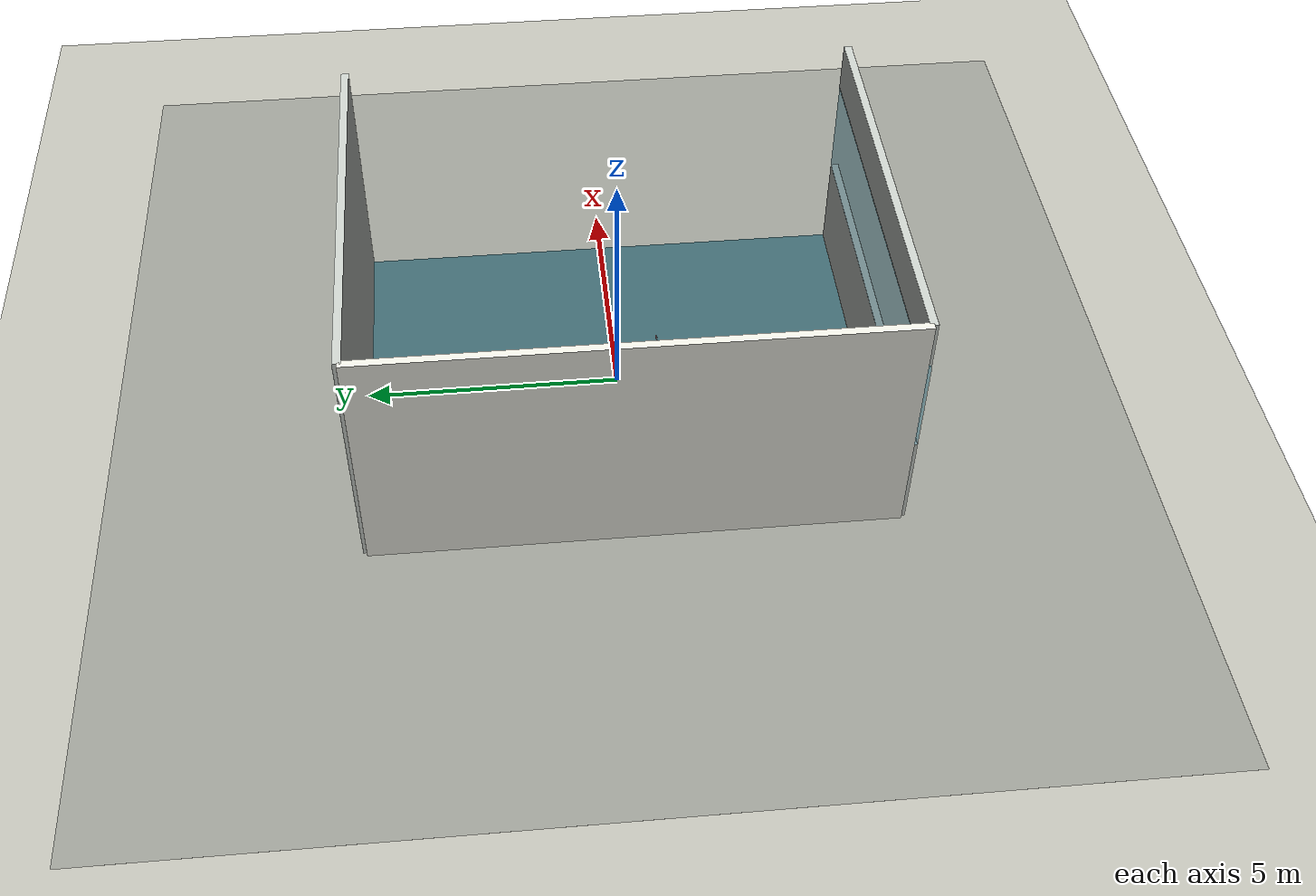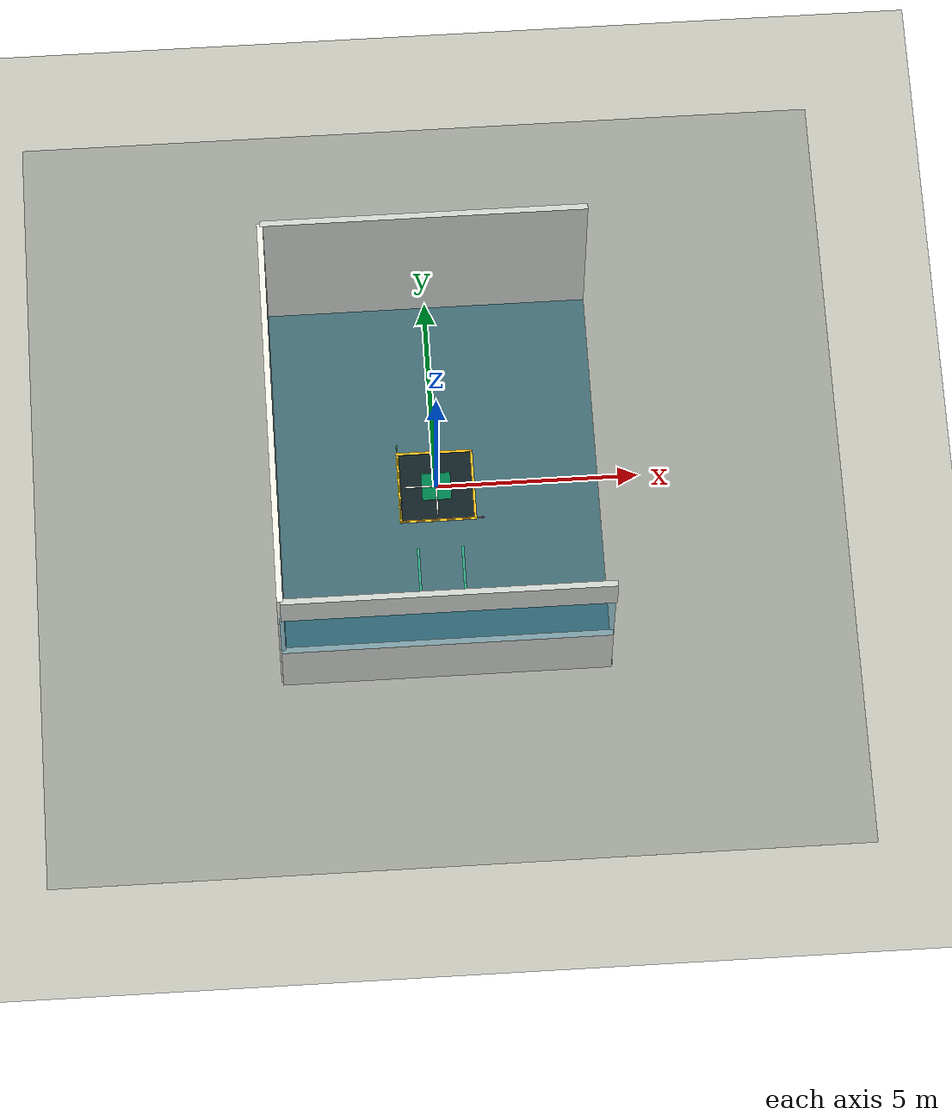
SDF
<sdf version="1.9">
 <world name="laboratory_no_landingbox">
  <physics type="ode">
   <ode>
    <solver>
     <type>quick</type>
     <iters>10</iters>
     <sor>1.3</sor>
     <use_dynamic_moi_rescaling>0</use_dynamic_moi_rescaling>
    </solver>
    <constraints>
     <cfm>0</cfm>
     <erp>0.2</erp>
     <contact_max_correcting_vel>100</contact_max_correcting_vel>
     <contact_surface_layer>0.001</contact_surface_layer>
    </constraints>
   </ode>
   <max_step_size>0.004</max_step_size>
   <real_time_factor>1.0</real_time_factor>
   <real_time_update_rate>250</real_time_update_rate>
  </physics>
  <gravity>0 0 -9.8</gravity>
  <magnetic_field>6e-06 2.3e-05 -4.2e-05</magnetic_field>
  <atmosphere type="adiabatic"/>
  <scene>
   <grid>false</grid>
   <ambient>0.58 0.58 0.56 1</ambient>
   <background>0.78 0.80 0.82 1</background>
   <shadows>true</shadows>
  </scene>
  <model name="debug_world_axes">
   <static>true</static>
   <pose>-0.92 -0.92 0 0 0 0</pose>
   <link name="axes_link">
    <visual name="origin_dot">
     <pose>0 0 0.055 0 0 0</pose>
     <geometry><sphere><radius>0.028</radius></sphere></geometry>
     <material>
      <ambient>0.75 0.65 0.15 0.55</ambient>
      <diffuse>0.75 0.65 0.15 0.55</diffuse>
      <emissive>0.08 0.06 0.00 1</emissive>
     </material>
     <transparency>0.10</transparency>
     <cast_shadows>false</cast_shadows>
    </visual>
    <visual name="x_axis_red_line">
     <pose>1.00 0 0.055 0 1.5708 0</pose>
     <geometry><cylinder><radius>0.006</radius><length>2.00</length></cylinder></geometry>
     <material>
      <ambient>0.75 0.10 0.10 0.45</ambient>
      <diffuse>0.75 0.10 0.10 0.45</diffuse>
      <emissive>0.04 0.00 0.00 1</emissive>
     </material>
     <transparency>0.10</transparency>
     <cast_shadows>false</cast_shadows>
    </visual>
    <visual name="x_axis_tip">
     <pose>2.04 0 0.055 0 1.5708 0</pose>
     <geometry><cone><radius>0.026</radius><length>0.08</length></cone></geometry>
     <material>
      <ambient>0.75 0.10 0.10 0.45</ambient>
      <diffuse>0.75 0.10 0.10 0.45</diffuse>
      <emissive>0.04 0.00 0.00 1</emissive>
     </material>
     <transparency>0.10</transparency>
     <cast_shadows>false</cast_shadows>
    </visual>
    <visual name="y_axis_green_line">
     <pose>0 1.00 0.065 -1.5708 0 0</pose>
     <geometry><cylinder><radius>0.006</radius><length>2.00</length></cylinder></geometry>
     <material>
      <ambient>0.10 0.65 0.10 0.45</ambient>
      <diffuse>0.10 0.65 0.10 0.45</diffuse>
      <emissive>0.00 0.04 0.00 1</emissive>
     </material>
     <transparency>0.10</transparency>
     <cast_shadows>false</cast_shadows>
    </visual>
    <visual name="y_axis_tip">
     <pose>0 2.04 0.065 -1.5708 0 0</pose>
     <geometry><cone><radius>0.026</radius><length>0.08</length></cone></geometry>
     <material>
      <ambient>0.10 0.65 0.10 0.45</ambient>
      <diffuse>0.10 0.65 0.10 0.45</diffuse>
      <emissive>0.00 0.04 0.00 1</emissive>
     </material>
     <transparency>0.10</transparency>
     <cast_shadows>false</cast_shadows>
    </visual>
    <visual name="z_axis_blue_line">
     <pose>0 0 0.60 0 0 0</pose>
     <geometry><cylinder><radius>0.006</radius><length>1.20</length></cylinder></geometry>
     <material>
      <ambient>0.10 0.20 0.80 0.45</ambient>
      <diffuse>0.10 0.20 0.80 0.45</diffuse>
      <emissive>0.00 0.00 0.05 1</emissive>
     </material>
     <transparency>0.10</transparency>
     <cast_shadows>false</cast_shadows>
    </visual>
    <visual name="z_axis_tip">
     <pose>0 0 1.24 0 0 0</pose>
     <geometry><cone><radius>0.026</radius><length>0.08</length></cone></geometry>
     <material>
      <ambient>0.10 0.20 0.80 0.45</ambient>
      <diffuse>0.10 0.20 0.80 0.45</diffuse>
      <emissive>0.00 0.00 0.05 1</emissive>
     </material>
     <transparency>0.10</transparency>
     <cast_shadows>false</cast_shadows>
    </visual>
   </link>
  </model>
  <model name="ground_plane">
   <static>true</static>
   <link name="link">
    <collision name="collision">
     <geometry><plane><normal>0 0 1</normal><size>500 500</size></plane></geometry>
     <surface><friction><ode><mu>100</mu><mu2>50</mu2></ode></friction></surface>
    </collision>
    <visual name="visual">
     <geometry><plane><normal>0 0 1</normal><size>500 500</size></plane></geometry>
     <material>
      <ambient>0.74 0.74 0.70 1</ambient>
      <diffuse>0.74 0.74 0.70 1</diffuse>
      <specular>0.05 0.05 0.05 1</specular>
     </material>
    </visual>
    <inertial>
     <mass>1</mass>
     <inertia><ixx>1</ixx><ixy>0</ixy><ixz>0</ixz><iyy>1</iyy><iyz>0</iyz><izz>1</izz></inertia>
    </inertial>
   </link>
  </model>
  <light name="sunUTC" type="directional">
   <pose>0 0 500 0 0 0</pose>
   <intensity>1.15</intensity>
   <direction>-0.25 0.45 -0.86</direction>
   <diffuse>0.98 0.94 0.86 1</diffuse>
   <specular>0.28 0.28 0.25 1</specular>
   <attenuation><range>2000</range><linear>0</linear><constant>1</constant><quadratic>0</quadratic></attenuation>
   <spot><inner_angle>0</inner_angle><outer_angle>0</outer_angle><falloff>0</falloff></spot>
  </light>
  <spherical_coordinates>
   <surface_model>EARTH_WGS84</surface_model>
   <world_frame_orientation>ENU</world_frame_orientation>
   <latitude_deg>30.334034</latitude_deg>
   <longitude_deg>120.036295</longitude_deg>
   <elevation>0</elevation>
  </spherical_coordinates>
  <model name="Floor_room">
   <link name="main">
    <pose>0 0 0.01 0 -0 0</pose>
    <collision name="main_Collision"><geometry><box><size>20 20 0.001</size></box></geometry></collision>
    <visual name="main_Visual">
     <geometry><box><size>20 20 0.001</size></box></geometry>
     <material>
      <ambient>0.56 0.58 0.56 1</ambient>
      <diffuse>0.60 0.61 0.58 1</diffuse>
      <specular>0.02 0.02 0.02 1</specular>
     </material>
    </visual>
   </link>
   <static>true</static>
   <pose>0.043797 -0.01325 0 0 -0 0</pose>
  </model>
  <model name="window">
   <link name="link_2">
    <pose>-3.65586 -0.020997 0.361529 0 -0 0</pose>
    <inertial>
     <mass>1</mass>
     <inertia><ixx>1</ixx><ixy>0</ixy><ixz>0</ixz><iyy>1</iyy><iyz>0</iyz><izz>1</izz></inertia>
    </inertial>
    <visual name="visual">
     <pose>0 0 0.9 0 -0 0</pose>
     <geometry><box><size>8 0.15 2</size></box></geometry>
     <material>
      <lighting>true</lighting>
      <ambient>0.20 0.50 0.60 0.7</ambient>
      <diffuse>0.22 0.62 0.75 0.7</diffuse>
      <specular>0.18 0.18 0.18 1</specular>
      <emissive>0.02 0.06 0.08 1</emissive>
     </material>
     <transparency>0.55</transparency>
    </visual>
    <collision name="collision">
     <pose>0 0 0.9 0 -0 0</pose>
     <geometry><box><size>8 0.15 2</size></box></geometry>
     <surface>
      <friction>
       <ode><mu>1</mu><mu2>1</mu2><fdir1>0 0 0</fdir1><slip1>0</slip1><slip2>0</slip2></ode>
       <torsional>
        <coefficient>1</coefficient>
        <patch_radius>0</patch_radius>
        <surface_radius>0</surface_radius>
        <use_patch_radius>1</use_patch_radius>
        <ode><slip>0</slip></ode>
       </torsional>
      </friction>
      <bounce><restitution_coefficient>0</restitution_coefficient><threshold>1e+06</threshold></bounce>
      <contact>
       <collide_without_contact>0</collide_without_contact>
       <collide_without_contact_bitmask>1</collide_without_contact_bitmask>
       <collide_bitmask>1</collide_bitmask>
       <ode>
        <soft_cfm>0</soft_cfm>
        <soft_erp>0.2</soft_erp>
        <kp>1e+13</kp>
        <kd>1</kd>
        <max_vel>0.01</max_vel>
        <min_depth>0</min_depth>
       </ode>
       <bullet>
        <split_impulse>1</split_impulse>
        <split_impulse_penetration_threshold>-0.01</split_impulse_penetration_threshold>
        <soft_cfm>0</soft_cfm>
        <soft_erp>0.2</soft_erp>
        <kp>1e+13</kp>
        <kd>1</kd>
       </bullet>
      </contact>
     </surface>
    </collision>
   </link>
   <static>true</static>
   <pose>3.62277 -4.97689 1.7565 0 -0 0</pose>
  </model>
  <model name="Workshop">
   <link name="Wall_10">
    <pose>-2.5053 2.09449 2 0 0 -1.5708</pose>
    <inertial>
     <mass>1</mass>
     <inertia><ixx>1</ixx><ixy>0</ixy><ixz>0</ixz><iyy>1</iyy><iyz>0</iyz><izz>1</izz></inertia>
    </inertial>
    <visual name="Wall_10_Visual">
     <pose>0 0 0.5 0 -0 0</pose>
     <geometry><box><size>10 0.15 5</size></box></geometry>
     <material>
      <ambient>0.88 0.88 0.84 1</ambient>
      <diffuse>0.92 0.92 0.88 1</diffuse>
      <specular>0.02 0.02 0.02 1</specular>
      <emissive>0 0 0 1</emissive>
     </material>
    </visual>
    <collision name="Wall_10_Collision">
     <pose>0 0 0.5 0 -0 0</pose>
     <geometry><box><size>10 0.15 5</size></box></geometry>
     <surface>
      <friction>
       <ode><mu>1</mu><mu2>1</mu2><fdir1>0 0 0</fdir1><slip1>0</slip1><slip2>0</slip2></ode>
       <torsional>
        <coefficient>1</coefficient>
        <patch_radius>0</patch_radius>
        <surface_radius>0</surface_radius>
        <use_patch_radius>1</use_patch_radius>
        <ode><slip>0</slip></ode>
       </torsional>
      </friction>
      <bounce><restitution_coefficient>0</restitution_coefficient><threshold>1e+06</threshold></bounce>
      <contact>
       <collide_without_contact>0</collide_without_contact>
       <collide_without_contact_bitmask>1</collide_without_contact_bitmask>
       <collide_bitmask>1</collide_bitmask>
       <ode>
        <soft_cfm>0</soft_cfm>
        <soft_erp>0.2</soft_erp>
        <kp>1e+13</kp>
        <kd>1</kd>
        <max_vel>0.01</max_vel>
        <min_depth>0</min_depth>
       </ode>
       <bullet>
        <split_impulse>1</split_impulse>
        <split_impulse_penetration_threshold>-0.01</split_impulse_penetration_threshold>
        <soft_cfm>0</soft_cfm>
        <soft_erp>0.2</soft_erp>
        <kp>1e+13</kp>
        <kd>1</kd>
       </bullet>
      </contact>
     </surface>
    </collision>
   </link>
   <link name="Wall_11">
    <pose>1.46131 -2.90507 0.516113 0 -0 3.14159</pose>
    <inertial>
     <inertia><ixx>1</ixx><ixy>0</ixy><ixz>0</ixz><iyy>1</iyy><iyz>0</iyz><izz>1</izz></inertia>
     <mass>1</mass>
    </inertial>
    <visual name="Wall_11_Visual">
     <pose>0 0 0.5 0 -0 0</pose>
     <geometry><box><size>8 0.15 2</size></box></geometry>
     <material>
      <ambient>0.72 0.74 0.72 1</ambient>
      <emissive>0 0 0 1</emissive>
      <diffuse>0.78 0.80 0.78 1</diffuse>
      <specular>0.02 0.02 0.02 1</specular>
     </material>
    </visual>
    <collision name="Wall_11_Collision">
     <pose>0 0 0.5 0 -0 0</pose>
     <geometry><box><size>8 0.15 2</size></box></geometry>
     <surface>
      <friction>
       <ode><mu>1</mu><mu2>1</mu2><fdir1>0 0 0</fdir1><slip1>0</slip1><slip2>0</slip2></ode>
       <torsional>
        <coefficient>1</coefficient>
        <patch_radius>0</patch_radius>
        <surface_radius>0</surface_radius>
        <use_patch_radius>1</use_patch_radius>
        <ode><slip>0</slip></ode>
       </torsional>
      </friction>
      <bounce><restitution_coefficient>0</restitution_coefficient><threshold>1e+06</threshold></bounce>
      <contact>
       <collide_without_contact>0</collide_without_contact>
       <collide_without_contact_bitmask>1</collide_without_contact_bitmask>
       <collide_bitmask>1</collide_bitmask>
       <ode>
        <soft_cfm>0</soft_cfm>
        <soft_erp>0.2</soft_erp>
        <kp>1e+13</kp>
        <kd>1</kd>
        <max_vel>0.01</max_vel>
        <min_depth>0</min_depth>
       </ode>
       <bullet>
        <split_impulse>1</split_impulse>
        <split_impulse_penetration_threshold>-0.01</split_impulse_penetration_threshold>
        <soft_cfm>0</soft_cfm>
        <soft_erp>0.2</soft_erp>
        <kp>1e+13</kp>
        <kd>1</kd>
       </bullet>
      </contact>
     </surface>
    </collision>
   </link>
   <link name="Wall_11_clone">
    <pose>1.4947 -2.90551 4 0 -0 3.14159</pose>
    <inertial>
     <inertia><ixx>1</ixx><ixy>0</ixy><ixz>0</ixz><iyy>1</iyy><iyz>0</iyz><izz>1</izz></inertia>
     <mass>1</mass>
    </inertial>
    <visual name="Wall_11_Visual">
     <pose>0 0 0.5 0 -0 0</pose>
     <geometry><box><size>8 0.15 1</size></box></geometry>
     <material>
      <ambient>0.72 0.74 0.72 1</ambient>
      <emissive>0 0 0 1</emissive>
      <diffuse>0.78 0.80 0.78 1</diffuse>
      <specular>0.02 0.02 0.02 1</specular>
     </material>
    </visual>
    <collision name="Wall_11_Collision">
     <pose>0 0 0.5 0 -0 0</pose>
     <geometry><box><size>7.71217 0.15 1</size></box></geometry>
     <surface>
      <friction>
       <ode><mu>1</mu><mu2>1</mu2><fdir1>0 0 0</fdir1><slip1>0</slip1><slip2>0</slip2></ode>
       <torsional>
        <coefficient>1</coefficient>
        <patch_radius>0</patch_radius>
        <surface_radius>0</surface_radius>
        <use_patch_radius>1</use_patch_radius>
        <ode><slip>0</slip></ode>
       </torsional>
      </friction>
      <bounce><restitution_coefficient>0</restitution_coefficient><threshold>1e+06</threshold></bounce>
      <contact>
       <collide_without_contact>0</collide_without_contact>
       <collide_without_contact_bitmask>1</collide_without_contact_bitmask>
       <collide_bitmask>1</collide_bitmask>
       <ode>
        <soft_cfm>0</soft_cfm>
        <soft_erp>0.2</soft_erp>
        <kp>1e+13</kp>
        <kd>1</kd>
        <max_vel>0.01</max_vel>
        <min_depth>0</min_depth>
       </ode>
       <bullet>
        <split_impulse>1</split_impulse>
        <split_impulse_penetration_threshold>-0.01</split_impulse_penetration_threshold>
        <soft_cfm>0</soft_cfm>
        <soft_erp>0.2</soft_erp>
        <kp>1e+13</kp>
        <kd>1</kd>
       </bullet>
      </contact>
     </surface>
    </collision>
   </link>
   <link name="Wall_13">
    <pose>1.4947 7.09449 2 0 -0 3.14159</pose>
    <inertial>
     <mass>1</mass>
     <inertia><ixx>1</ixx><ixy>0</ixy><ixz>0</ixz><iyy>1</iyy><iyz>0</iyz><izz>1</izz></inertia>
    </inertial>
    <visual name="Wall_13_Visual">
     <pose>0 0 0.5 0 -0 0</pose>
     <geometry><box><size>8 0.15 5</size></box></geometry>
     <material>
      <ambient>0.72 0.74 0.72 1</ambient>
      <diffuse>0.78 0.80 0.78 1</diffuse>
      <specular>0.02 0.02 0.02 1</specular>
      <emissive>0 0 0 1</emissive>
     </material>
    </visual>
    <collision name="Wall_13_Collision">
     <pose>0 0 0.5 0 -0 0</pose>
     <geometry><box><size>8 0.15 5</size></box></geometry>
     <surface>
      <friction>
       <ode><mu>1</mu><mu2>1</mu2><fdir1>0 0 0</fdir1><slip1>0</slip1><slip2>0</slip2></ode>
       <torsional>
        <coefficient>1</coefficient>
        <patch_radius>0</patch_radius>
        <surface_radius>0</surface_radius>
        <use_patch_radius>1</use_patch_radius>
        <ode><slip>0</slip></ode>
       </torsional>
      </friction>
      <bounce><restitution_coefficient>0</restitution_coefficient><threshold>1e+06</threshold></bounce>
      <contact>
       <collide_without_contact>0</collide_without_contact>
       <collide_without_contact_bitmask>1</collide_without_contact_bitmask>
       <collide_bitmask>1</collide_bitmask>
       <ode>
        <soft_cfm>0</soft_cfm>
        <soft_erp>0.2</soft_erp>
        <kp>1e+13</kp>
        <kd>1</kd>
        <max_vel>0.01</max_vel>
        <min_depth>0</min_depth>
       </ode>
       <bullet>
        <split_impulse>1</split_impulse>
        <split_impulse_penetration_threshold>-0.01</split_impulse_penetration_threshold>
        <soft_cfm>0</soft_cfm>
        <soft_erp>0.2</soft_erp>
        <kp>1e+13</kp>
        <kd>1</kd>
       </bullet>
      </contact>
     </surface>
    </collision>
   </link>
   <link name="link_0">
    <inertial>
     <mass>1</mass>
     <inertia>
      <ixx>0.166667</ixx>
      <ixy>0</ixy>
      <ixz>0</ixz>
      <iyy>0.166667</iyy>
      <iyz>0</iyz>
      <izz>0.166667</izz>
     </inertia>
    </inertial>
    <pose>1.49282 2.06191 0.012848 0 0 -1.5708</pose>
    <visual name="visual">
     <geometry><box><size>10 8 0.013</size></box></geometry>
     <material>
      <lighting>1</lighting>
      <ambient>0.20 0.33 0.36 1</ambient>
      <diffuse>0.24 0.40 0.43 1</diffuse>
      <specular>0.02 0.02 0.02 1</specular>
      <emissive>0 0 0 1</emissive>
     </material>
    </visual>
    <collision name="collision"><geometry><box><size>10 8 0.013</size></box></geometry></collision>
   </link>
   <static>true</static>
   <pose>-1.4947 -2.09449 0 0 -0 0</pose>
  </model>
  <light name="soft_ceiling_fill" type="point">
   <pose>0 0 4.5 0 0 0</pose>
   <cast_shadows>false</cast_shadows>
   <intensity>0.65</intensity>
   <diffuse>0.92 0.96 1 1</diffuse>
   <specular>0.15 0.15 0.15 1</specular>
   <attenuation>
    <range>12</range>
    <constant>0.7</constant>
    <linear>0.08</linear>
    <quadratic>0.01</quadratic>
   </attenuation>
  </light>
  <light name="landing_zone_fill" type="point">
   <pose>0 0 2.2 0 0 0</pose>
   <cast_shadows>false</cast_shadows>
   <intensity>0.45</intensity>
   <diffuse>0.75 0.95 0.85 1</diffuse>
   <specular>0.10 0.10 0.10 1</specular>
   <attenuation>
    <range>5</range>
    <constant>0.8</constant>
    <linear>0.15</linear>
    <quadratic>0.03</quadratic>
   </attenuation>
  </light>
  <model name="landing_zone_mat">
   <static>true</static>
   <pose>0 0 0.018 0 0 0</pose>
   <link name="link">
    <visual name="visual">
     <geometry><box><size>1.80 1.80 0.006</size></box></geometry>
     <material>
      <ambient>0.05 0.09 0.10 1</ambient>
      <diffuse>0.06 0.12 0.13 1</diffuse>
      <specular>0.02 0.02 0.02 1</specular>
     </material>
     <transparency>0.10</transparency>
     <cast_shadows>false</cast_shadows>
    </visual>
   </link>
  </model>
  <model name="landing_zone_center">
   <static>true</static>
   <pose>0 0 0.024 0 0 0</pose>
   <link name="link">
    <visual name="visual">
     <geometry><box><size>0.72 0.72 0.004</size></box></geometry>
     <material>
      <ambient>0.00 0.35 0.22 1</ambient>
      <diffuse>0.00 0.60 0.36 1</diffuse>
      <specular>0.02 0.02 0.02 1</specular>
     </material>
     <transparency>0.18</transparency>
     <cast_shadows>false</cast_shadows>
    </visual>
   </link>
  </model>
  <model name="landing_zone_border_n">
   <static>true</static>
   <pose>0 0.92 0.03 0 0 0</pose>
   <link name="link">
    <visual name="visual">
     <geometry><box><size>1.90 0.06 0.008</size></box></geometry>
     <material>
      <ambient>1.00 0.74 0.10 1</ambient>
      <diffuse>1.00 0.74 0.10 1</diffuse>
      <specular>0.02 0.02 0.02 1</specular>
     </material>
     <cast_shadows>false</cast_shadows>
    </visual>
   </link>
  </model>
  <model name="landing_zone_border_s">
   <static>true</static>
   <pose>0 -0.92 0.03 0 0 0</pose>
   <link name="link">
    <visual name="visual">
     <geometry><box><size>1.90 0.06 0.008</size></box></geometry>
     <material>
      <ambient>1.00 0.74 0.10 1</ambient>
      <diffuse>1.00 0.74 0.10 1</diffuse>
      <specular>0.02 0.02 0.02 1</specular>
     </material>
     <cast_shadows>false</cast_shadows>
    </visual>
   </link>
  </model>
  <model name="landing_zone_border_e">
   <static>true</static>
   <pose>0.92 0 0.03 0 0 0</pose>
   <link name="link">
    <visual name="visual">
     <geometry><box><size>0.06 1.90 0.008</size></box></geometry>
     <material>
      <ambient>1.00 0.74 0.10 1</ambient>
      <diffuse>1.00 0.74 0.10 1</diffuse>
      <specular>0.02 0.02 0.02 1</specular>
     </material>
     <cast_shadows>false</cast_shadows>
    </visual>
   </link>
  </model>
  <model name="landing_zone_border_w">
   <static>true</static>
   <pose>-0.92 0 0.03 0 0 0</pose>
   <link name="link">
    <visual name="visual">
     <geometry><box><size>0.06 1.90 0.008</size></box></geometry>
     <material>
      <ambient>1.00 0.74 0.10 1</ambient>
      <diffuse>1.00 0.74 0.10 1</diffuse>
      <specular>0.02 0.02 0.02 1</specular>
     </material>
     <cast_shadows>false</cast_shadows>
    </visual>
   </link>
  </model>
  <model name="clearance_mark_x">
   <static>true</static>
   <pose>0 0 0.034 0 0 0</pose>
   <link name="link">
    <visual name="visual">
     <geometry><box><size>1.55 0.035 0.006</size></box></geometry>
     <material>
      <ambient>0.95 0.95 0.90 1</ambient>
      <diffuse>0.95 0.95 0.90 1</diffuse>
      <specular>0.02 0.02 0.02 1</specular>
     </material>
     <transparency>0.05</transparency>
     <cast_shadows>false</cast_shadows>
    </visual>
   </link>
  </model>
  <model name="clearance_mark_y">
   <static>true</static>
   <pose>0 0 0.035 0 0 0</pose>
   <link name="link">
    <visual name="visual">
     <geometry><box><size>0.035 1.55 0.006</size></box></geometry>
     <material>
      <ambient>0.95 0.95 0.90 1</ambient>
      <diffuse>0.95 0.95 0.90 1</diffuse>
      <specular>0.02 0.02 0.02 1</specular>
     </material>
     <transparency>0.05</transparency>
     <cast_shadows>false</cast_shadows>
    </visual>
   </link>
  </model>
  <model name="clearance_lane_left">
   <static>true</static>
   <pose>-0.55 -2.65 0.026 0 0 0</pose>
   <link name="link">
    <visual name="visual">
     <geometry><box><size>0.06 2.0 0.005</size></box></geometry>
     <material>
      <ambient>0.18 0.75 0.55 1</ambient>
      <diffuse>0.18 0.75 0.55 1</diffuse>
      <specular>0.02 0.02 0.02 1</specular>
     </material>
     <transparency>0.25</transparency>
     <cast_shadows>false</cast_shadows>
    </visual>
   </link>
  </model>
  <model name="clearance_lane_right">
   <static>true</static>
   <pose>0.55 -2.65 0.026 0 0 0</pose>
   <link name="link">
    <visual name="visual">
     <geometry><box><size>0.06 2.0 0.005</size></box></geometry>
     <material>
      <ambient>0.18 0.75 0.55 1</ambient>
      <diffuse>0.18 0.75 0.55 1</diffuse>
      <specular>0.02 0.02 0.02 1</specular>
     </material>
     <transparency>0.25</transparency>
     <cast_shadows>false</cast_shadows>
    </visual>
   </link>
  </model>
 </world>
</sdf>
